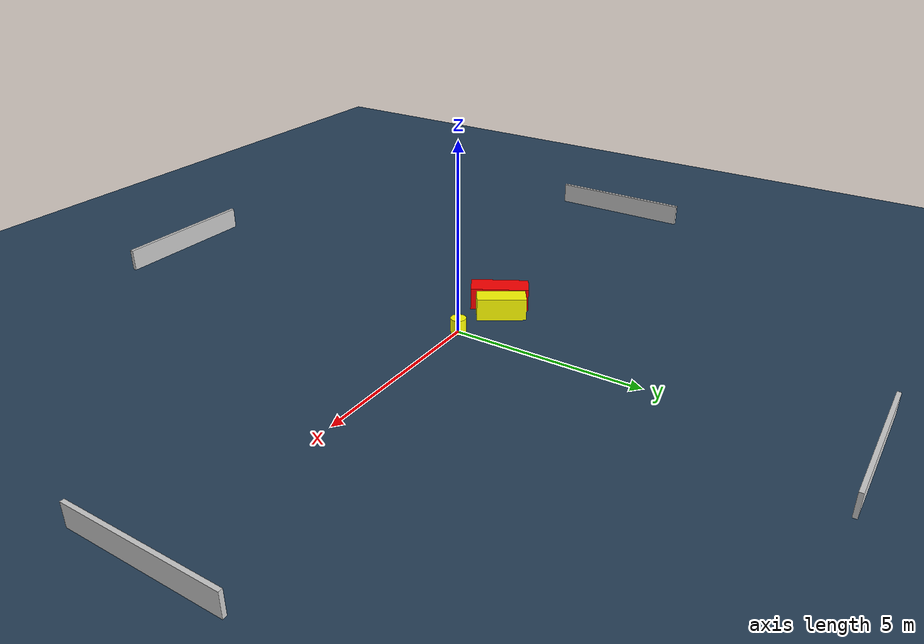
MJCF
<?xml version="1.0" ?>
<mujoco model="generated_environment">
  <option timestep="0.01" integrator="RK4" cone="elliptic"/>
  <default>
    <geom density="1"/>
  </default>
  <asset>
    <texture builtin="gradient" height="3072" name="skybox" rgb1="0.3 0.5 0.7" rgb2="0 0 0" type="skybox" width="512"/>
    <texture builtin="checker" height="300" name="groundplane" rgb1="0.2 0.3 0.4" rgb2="0.1 0.2 0.3" type="2d" width="300"/>
    <material name="groundplane" reflectance="0.2" texrepeat="5 5" texture="groundplane"/>
  </asset>
  <worldbody>
    <light dir="0 0 -1" directional="true" pos="0 0 1.5"/>
    <geom condim="3" friction="0.5 0.005 0.001" material="groundplane" name="floor" pos="0 0 0" size="0 0 0.05" type="plane"/>
    <body name="walls">
      <geom name="wall_1" condim="4" pos="-10.0 0.0 0.3" rgba="0.800000011920929 0.800000011920929 0.800000011920929 1.0" size="0.05 2.0 0.3" type="box"/>
      <geom name="wall_2" condim="4" pos="10.0 0.0 0.3" rgba="0.800000011920929 0.800000011920929 0.800000011920929 1.0" size="0.05 2.0 0.3" type="box"/>
      <geom name="wall_3" condim="4" pos="0.0 -10.0 0.3" rgba="0.800000011920929 0.800000011920929 0.800000011920929 1.0" size="2.0 0.05 0.3" type="box"/>
      <geom name="wall_4" condim="4" pos="0.0 10.0 0.3" rgba="0.800000011920929 0.800000011920929 0.800000011920929 1.0" size="2.0 0.05 0.3" type="box"/>
    </body>
    <body name="robot">
      <joint name="joint_x" type="slide" pos="0 0 0" axis="1 0 0"/>
      <joint name="joint_y" type="slide" pos="0 0 0" axis="0 1 0"/>
      <geom name="robot" type="cylinder" pos="0.0 0.0 0.2" size="0.2 0.2 0.0" mass="5.0" friction="1.0 0.005 0.0001" condim="4" rgba="1.0 1.0 0.0 1.0"/>
    </body>
    <body name="obstacle_1_movable">
      <geom name="obstacle_1_movable" condim="4" pos="-1.3362338838245407 0.47507110405444736 0.3" euler="0 0 123.87711255520219" friction="0.0 0.005 0.001" rgba="1.0 1.0 0.0 1.0" size="0.6459131180680708 0.2589540606020338 0.3" type="box" mass="0.1"/>
      <joint type="free"/>
    </body>
    <body name="obstacle_2_static">
      <geom name="obstacle_2_static" condim="4" pos="-1.8628212197838445 0.11526204582906546 0.3" euler="0 0 119.69816074717369" friction="0.0 0.005 0.001" rgba="1.0 0.0 0.0 1.0" size="0.7666227306171725 0.30248725542409566 0.3" type="box"/>
    </body>
  </worldbody>
  <actuator>
    <motor name="actuator_x" joint="joint_x" gear="1" ctrlrange="-1 1"/>
    <motor name="actuator_y" joint="joint_y" gear="1" ctrlrange="-1 1"/>
  </actuator>
</mujoco>
